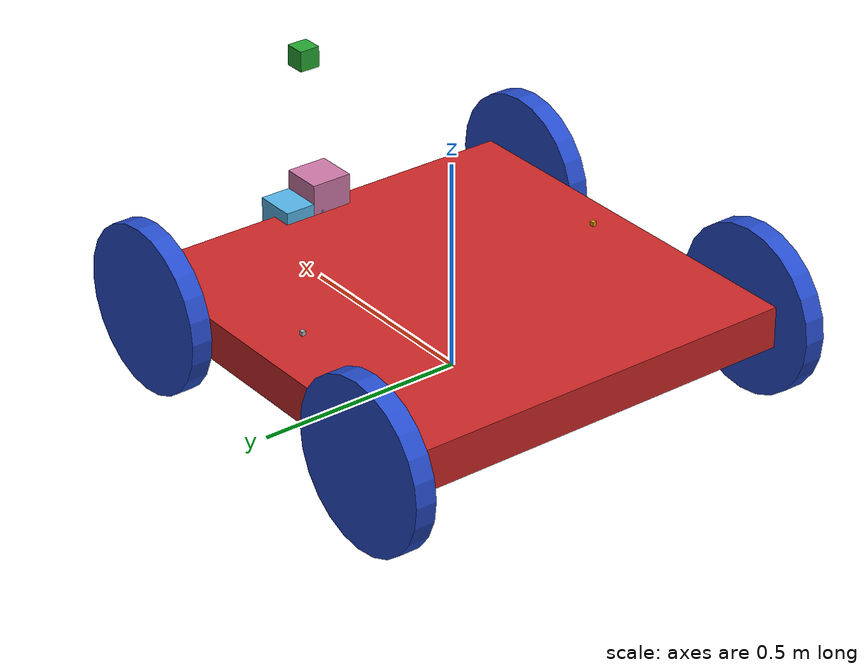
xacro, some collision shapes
<?xml version='1.0'?>

<robot name="myrobot" xmlns:xacro="http://www.ros.org/wiki/xacro">

  <xacro:property name="cameraSize" value="0.05"/>
  <xacro:property name="cameraMass" value="0.1"/>

  <xacro:include filename="$(find mybot_description)/urdf/mybot.gazebo" />

  <!--using xacro to set values of IMU-->
  <xacro:property name="IMU_size" value="0.1"/>
  <xacro:property name="IMU_origin_x" value="0"/>
  <xacro:property name="IMU_origin_y" value="0"/>
  <xacro:property name="IMU_origin_z" value="0.1"/>

<!--using xacro to set values of GPS-->
  <xacro:property name="GPS_size" value="0.01"/>
  <xacro:property name="GPS_origin_x" value="0"/>
  <xacro:property name="GPS_origin_y" value="0.1"/>
  <xacro:property name="GPS_origin_z" value="0.1"/>

 <!-- CHASSIS -->

  <link name="chassis">
    <pose>0 0 0.1 0 0 0</pose>
    <inertial>
      <mass value="5.0"/>
      <origin xyz="0 0 0.15" rpy=" 0 0 0"/>
      <inertia
          ixx="0.09" ixy="0" ixz="0"
          iyy="0.09" iyz="0"
          izz="0.09" />
    </inertial>
    <collision name='collision'>
     <geometry>
        <box size="1.0 1.0 .1"/>
      </geometry>
    </collision>
    <visual name='chassis_visual'>
      <origin xyz="0 0 0.15" rpy=" 0 0 0"/>
      <geometry>
        <box size="1.0 1.0 .1"/>
      </geometry>
    </visual>
  </link>
  <!-- WHEEL LINK -->

  <link name="rear_left_wheel">
    <collision name="collision">
      <origin xyz="0 0 0" rpy="0 1.5707 1.5707"/>
      <geometry>
        <cylinder radius="0.2" length="0.05"/>
      </geometry>
    </collision>
    <visual name="rear_left_wheel_visual">
      <origin xyz="0 0 0" rpy="0 1.5707 1.5707"/>
      <geometry>
        <cylinder radius="0.2" length="0.05"/>
      </geometry>
    </visual>
    <inertial>
      <origin xyz="0 0 0" rpy="0 1.5707 1.5707"/>
      <mass value="5"/>
      <cylinder_inertia m="5" r="0.2" h="0.05"/>
      <inertia
        ixx="0.051" ixy="0.0" ixz="0.0"
        iyy="0.051" iyz="0.0"
        izz="0.1"/>
    </inertial>
  </link>

 <link name="rear_right_wheel">
    <collision name="collision">
      <origin xyz="0 0 0" rpy="0 1.5707 1.5707"/>
      <geometry>
        <cylinder radius="0.2" length="0.05"/>
      </geometry>
    </collision>
    <visual name="rear_right_wheel_visual">
      <origin xyz="0 0 0" rpy="0 1.5707 1.5707"/>
      <geometry>
        <cylinder radius="0.2" length="0.05"/>
      </geometry>
    </visual>
    <inertial>
      <origin xyz="0 0 0" rpy="0 1.5707 1.5707"/>
      <mass value="5"/>
      <cylinder_inertia m="5" r="0.2" h="0.05"/>
      <inertia
        ixx="0.051" ixy="0.0" ixz="0.0"
        iyy="0.051" iyz="0.0"
        izz="0.1"/>
    </inertial>
  </link>

  <link name="front_left_wheel">
    <collision name="collision">
      <origin xyz="0 0 0" rpy="0 1.5707 1.5707"/>
      <geometry>
        <cylinder radius="0.2" length="0.05"/>
      </geometry>
    </collision>
    <visual name="front_left_wheel_visual">
      <origin xyz="0 0 0" rpy="0 1.5707 1.5707"/>
      <geometry>
        <cylinder radius="0.2" length="0.05"/>
      </geometry>
    </visual>
    <inertial>
      <origin xyz="0 0 0" rpy="0 1.5707 1.5707"/>
      <mass value="5"/>
      <cylinder_inertia m="5" r="0.2" h="0.05"/>
      <inertia
        ixx="0.051" ixy="0.0" ixz="0.0"
        iyy="0.051" iyz="0.0"
        izz="0.1"/>
    </inertial>
  </link>

  <link name="front_right_wheel">
    <collision name="collision">
      <origin xyz="0 0 0" rpy="0 1.5707 1.5707"/>
      <geometry>
        <cylinder radius="0.2" length="0.05"/>
      </geometry>
    </collision>
    <visual name="front_right_wheel_visual">
      <origin xyz="0 0 0" rpy="0 1.5707 1.5707"/>
      <geometry>
        <cylinder radius="0.2" length="0.05"/>
      </geometry>
    </visual>
    <inertial>
      <origin xyz="0 0 0" rpy="0 1.5707 1.5707"/>
      <mass value="5"/>
      <cylinder_inertia m="5" r="0.2" h="0.05"/>
      <inertia
        ixx="0.051" ixy="0.0" ixz="0.0"
        iyy="0.051" iyz="0.0"
        izz="0.1"/>
    </inertial>
  </link>

  <!-- WHEEL JOINTS -->

  <joint type="continuous" name="rear_left_wheel_hinge">
    <origin xyz="0.4 0.525 0.15" rpy="0 0 0"/>
    <child link="rear_left_wheel"/>
    <parent link="chassis"/>
    <axis xyz="0 1 0" rpy="0 0 0"/>
    <limit effort="100" velocity="100"/>
    <joint_properties damping="0.0" friction="1.0"/>
  </joint>

  <joint type="continuous" name="rear_right_wheel_hinge">
    <origin xyz="0.4 -0.525 0.15" rpy="0 0 0"/>
    <child link="rear_right_wheel"/>
    <parent link="chassis"/>
    <axis xyz="0 1 0" rpy="0 0 0"/>
    <limit effort="100" velocity="100"/>
    <joint_properties damping="0.0" friction="1.0"/>
  </joint>

 <joint type="continuous" name="front_left_wheel_hinge">
    <origin xyz="-0.4 0.525 0.15" rpy="0 0 0"/>
    <child link="front_left_wheel"/>
    <parent link="chassis"/>
    <axis xyz="0 1 0" rpy="0 0 0"/>
    <limit effort="100" velocity="100"/>
    <joint_properties damping="0.0" friction="1.0"/>
  </joint>

  <joint type="continuous" name="front_right_wheel_hinge">
    <origin xyz="-0.4 -0.525 0.15" rpy="0 0 0"/>
    <child link="front_right_wheel"/>
    <parent link="chassis"/>
    <axis xyz="0 1 0" rpy="0 0 0"/>
    <limit effort="100" velocity="100"/>
    <joint_properties damping="0.0" friction="1.0"/>
  </joint>

  <link name="camera">
    <collision>
      <origin xyz="0 0 0.1" rpy="0 0 0"/>
      <geometry>
        <box size="${cameraSize} ${cameraSize} ${cameraSize}"/>
      </geometry>
    </collision>

    <visual>
      <origin xyz="0 0 0.1" rpy="0 0 0"/>
      <geometry>
        <box size="${cameraSize} ${cameraSize} ${cameraSize}"/>
      </geometry>
      <material name="green"/>
    </visual>

    <inertial>
      <mass value="${cameraMass}" />
      <origin xyz="0 0 0" rpy="0 0 0"/>
      <box_inertia m="${cameraMass}" x="${cameraSize}" y="${cameraSize}" z="${cameraSize}" />
      <inertia ixx="1e-6" ixy="0" ixz="0" iyy="1e-6" iyz="0" izz="1e-6" />
    </inertial>
  </link>

  <joint name="camera_joint" type="fixed">
    <axis xyz="0 1 0" />
    <origin xyz=".55 0 0.45" rpy="0 0 0"/>
    <parent link="chassis"/>
    <child link="camera"/>
  </joint>

<!-- HOKUYO LASER -->

  <link name="hokuyo">
    <collision>
      <origin xyz="0 0 0.125" rpy="0 0 0"/>
      <geometry>
        <box size="0.1 0.1 0.1"/>
      </geometry>
    </collision>

    <visual>
      <origin xyz="0 0 0.125" rpy="0 0 0"/>
        <geometry>
          <mesh filename="package://mybot_description/meshes/hokuyo.dae"/>
        </geometry>
    </visual>

    <inertial>
      <mass value="1e-5" />
      <origin xyz="0 0 0.125" rpy="0 0 0"/>
      <inertia ixx="1e-6" ixy="0" ixz="0" iyy="1e-6" iyz="0" izz="1e-6" />
      </inertial>
  </link>

  <joint name="hokuyo_joint" type="fixed">
    <axis xyz="0 1 0" />
    <origin xyz=".5 0 .10" rpy="0 0 0"/>
    <parent link="chassis"/>
    <child link="hokuyo"/>
  </joint>

  <!-- ULTRASONIC SENSOR -->

  <link name="us_sensor_left">
    <collision>
      <origin xyz="0 0 0" rpy="0 0 0"/>
      <geometry>
        <box size="0.01 0.01 0.01"/>
      </geometry>
    </collision>
    <visual>
      <origin xyz="0 0 0" rpy="0 0 0"/>
      <geometry>
        <box size="0.01 0.01 0.01"/>
      </geometry>
    </visual>
    <inertial>
      <mass value="1e-5" />
      <origin xyz="0 0 0" rpy="0 0 0"/>
      <inertia ixx="1e-6" ixy="0" ixz="0"
               iyy="1e-6" iyz="0"
               izz="1e-6" />
    </inertial>
  </link>

  <link name="us_sensor_right">
    <collision>
      <origin xyz="0 0 0" rpy="0 0 0"/>
      <geometry>
        <box size="0.01 0.01 0.01"/>
      </geometry>
    </collision>
    <visual>
      <origin xyz="0 0 0" rpy="0 0 0"/>
      <geometry>
        <box size="0.01 0.01 0.01"/>
      </geometry>
    </visual>
    <inertial>
      <mass value="1e-5" />
      <origin xyz="0 0 0" rpy="0 0 0"/>
      <inertia ixx="1e-6" ixy="0" ixz="0"
               iyy="1e-6" iyz="0"
               izz="1e-6" />
    </inertial>
  </link>

<!-- ULTRASONIC SENSOR JOINTS -->

  <joint name="us_sensor_left_joint" type="fixed">
    <axis xyz="0 1 0" />
    <origin rpy="0 0 1.57" xyz="0.0 0.4 0.225" />
    <parent link="chassis"/>
    <child link="us_sensor_left"/>
  </joint>

  <joint name="us_sensor_right_joint" type="fixed">
    <axis xyz="0 1 0" />
    <origin rpy="0 0 -1.57" xyz="0.0 -0.4 0.225" />
    <parent link="chassis"/>
    <child link="us_sensor_right"/>
  </joint>

<!-- DEPTH CAMERA -->

  <link name="camera_depth">
    <collision name="collision_camera_depth">
      <origin xyz="0 0 0.028575" rpy="0 0 0" />
      <geometry>
        <box size="0.1 0.1 0.1" />
      </geometry>
    </collision>
    <visual name="camera_depth_visual">
      <origin xyz="0 0 0.028575" rpy="0 0 0" />
      <geometry>
        <box size="0.1 0.1 0.1" />
      </geometry>
    </visual>
    <inertial>
      <mass value="0.1" />
      <origin xyz="0 0 0.0001" rpy="0 0 0"/>
      <inertia ixx="0.0001" ixy="0.0" ixz="0.0"
               iyy="0.0001" iyz="0.0"
               izz="0.0001" />
    </inertial>
  </link>

  <joint name="kinect_joint" type="fixed">
    <origin xyz="0.5 .075 0.15" rpy="0 0 0" />
    <child link="camera_depth" />
    <parent link="chassis" />
  </joint>

<!--IMU SENSOR-->

<link name="imu_link">
  <inertial>
    <mass value="0.001"/>
    <origin rpy="0 0 0" xyz="0 0 0"/>
    <inertia ixx="0.0001" ixy="0" ixz="0" iyy="0.000001" iyz="0" izz="0.0001"/>
  </inertial>
  <visual>
    <origin rpy="0 0 0" xyz="0 0 0"/>
    <geometry>
      <box size="${IMU_size} ${IMU_size} ${IMU_size}"/>
    </geometry>
    <material name="Blue"/>
  </visual>
  <collision>
    <origin rpy="0 0 0" xyz="0 0 0"/>
    <geometry>
      <box size="${IMU_size} ${IMU_size} ${IMU_size}"/>
    </geometry>
  </collision>
</link>
<joint name="imu_joint" type="fixed">
    <axis xyz="1 0 0"/>
    <origin xyz="${IMU_origin_x} ${IMU_origin_y} ${IMU_origin_z}"/>
    <parent link="chassis"/>
    <child link="imu_link"/>
  </joint>

<!--GPS SENSOR-->
<link name="gps_link">
  <inertial>
    <mass value="0.001"/>
    <origin rpy="0 0 0" xyz="0 0 0"/>
    <inertia ixx="0.0001" ixy="0" ixz="0" iyy="0.000001" iyz="0" izz="0.0001"/>
  </inertial>
  <visual>
    <origin rpy="0 0 0" xyz="0 0 0"/>
    <geometry>
      <box size="${GPS_size} ${GPS_size} ${GPS_size}"/>
    </geometry>
    <material name="red"/>
  </visual>
  <collision>
    <origin rpy="0 0 0" xyz="0 0 0"/>
    <geometry>
      <box size="${GPS_size} ${GPS_size} ${GPS_size}"/>
    </geometry>
  </collision>
</link>
<joint name="gps_joint" type="fixed">
    <axis xyz="1 0 0"/>
    <origin xyz="${GPS_origin_x} ${GPS_origin_y} ${GPS_origin_z}"/>
    <parent link="chassis"/>
    <child link="gps_link"/>
  </joint>

</robot>
